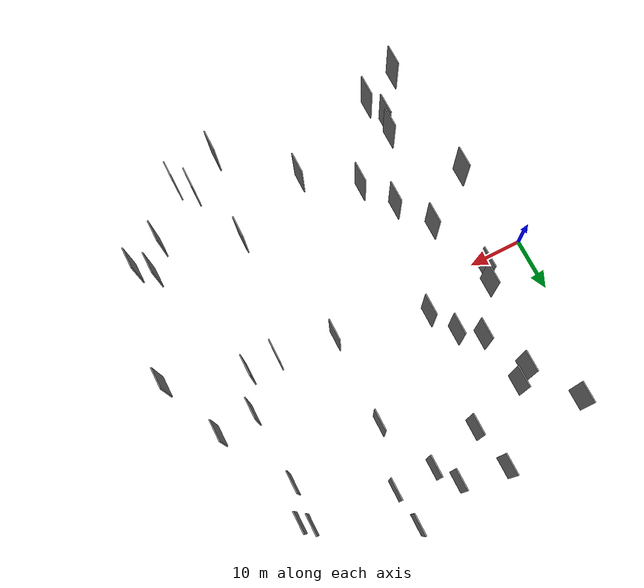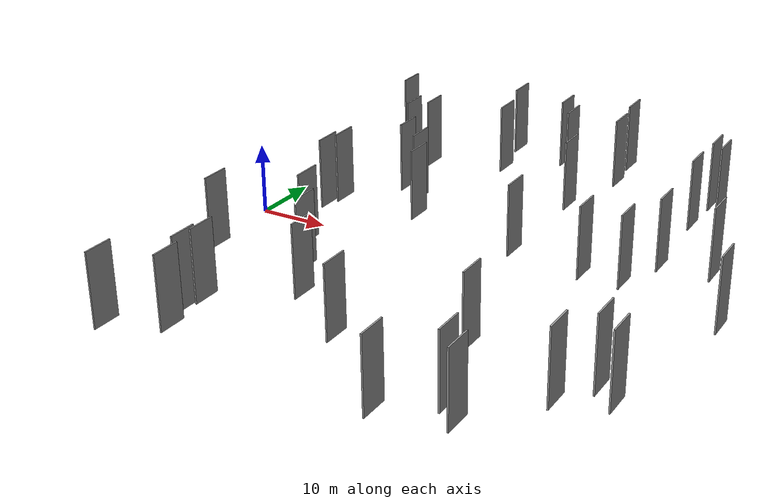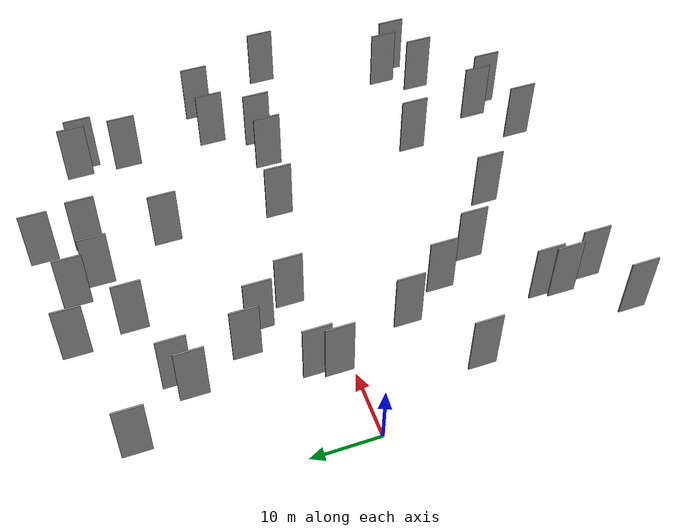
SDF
<sdf version="1.6">
 <world name="default">
  <scene>
   <sky><clouds><speed>12</speed></clouds></sky>
   <ambient>0.4 0.4 0.4 1</ambient>
   <background>0.7 0.7 0.7 1</background>
   <shadows>1</shadows>
  </scene>
  <gravity>0 0 -9.8066</gravity>
  <magnetic_field>6e-06 2.3e-05 -4.2e-05</magnetic_field>
  <physics default="0" name="default_physics" type="ode">
   <ode>
    <solver>
     <type>quick</type>
     <iters>10</iters>
     <sor>1.0</sor>
     <use_dynamic_moi_rescaling>0</use_dynamic_moi_rescaling>
    </solver>
    <constraints>
     <cfm>0</cfm>
     <erp>0.2</erp>
     <contact_max_correcting_vel>100</contact_max_correcting_vel>
     <contact_surface_layer>0.001</contact_surface_layer>
    </constraints>
   </ode>
   <max_step_size>0.004</max_step_size>
   <real_time_factor>1</real_time_factor>
   <real_time_update_rate>250</real_time_update_rate>
  </physics>
  <light name="sun" type="directional">
   <pose>0 0 10 0 0 0</pose>
   <diffuse>0.8 0.8 0.8 1</diffuse>
   <specular>0.2 0.2 0.2 1</specular>
   <attenuation>
    <range>1000</range>
    <constant>0.9</constant>
    <linear>0.01</linear>
    <quadratic>0.001</quadratic>
   </attenuation>
   <direction>-0.5 0.1 -0.9</direction>
  </light>
  <model name="grey_wall_1">
   <static>1</static>
   <pose>31.9503 32.8959 2.5 0.000000 0.000000 1.570796</pose>
   <link name="link">
    <pose>0 0 5.00 0 0 0</pose>
    <collision name="collision"><geometry><box><size>4.00 0.2 10.00</size></box></geometry></collision>
    <visual name="visual">
     <cast_shadows>0</cast_shadows>
     <geometry><box><size>4.00 0.2 10.00</size></box></geometry>
     <material>
      <script>
       <uri>model://grey_wall/materials/scripts</uri>
       <uri>model://grey_wall/materials/textures</uri>
       <name>vrc/grey_wall</name>
      </script>
     </material>
    </visual>
   </link>
  </model>
  <model name="grey_wall_2">
   <static>1</static>
   <pose>68.8717 -4.7218 2.5 0.000000 0.000000 1.570796</pose>
   <link name="link">
    <pose>0 0 5.00 0 0 0</pose>
    <collision name="collision"><geometry><box><size>4.00 0.2 10.00</size></box></geometry></collision>
    <visual name="visual">
     <cast_shadows>0</cast_shadows>
     <geometry><box><size>4.00 0.2 10.00</size></box></geometry>
     <material>
      <script>
       <uri>model://grey_wall/materials/scripts</uri>
       <uri>model://grey_wall/materials/textures</uri>
       <name>vrc/grey_wall</name>
      </script>
     </material>
    </visual>
   </link>
  </model>
  <model name="grey_wall_3">
   <static>1</static>
   <pose>19.7337 10.3597 2.5 0.000000 0.000000 1.570796</pose>
   <link name="link">
    <pose>0 0 5.00 0 0 0</pose>
    <collision name="collision"><geometry><box><size>4.00 0.2 10.00</size></box></geometry></collision>
    <visual name="visual">
     <cast_shadows>0</cast_shadows>
     <geometry><box><size>4.00 0.2 10.00</size></box></geometry>
     <material>
      <script>
       <uri>model://grey_wall/materials/scripts</uri>
       <uri>model://grey_wall/materials/textures</uri>
       <name>vrc/grey_wall</name>
      </script>
     </material>
    </visual>
   </link>
  </model>
  <model name="grey_wall_4">
   <static>1</static>
   <pose>43.0934 -39.1946 2.5 0.000000 0.000000 1.570796</pose>
   <link name="link">
    <pose>0 0 5.00 0 0 0</pose>
    <collision name="collision"><geometry><box><size>4.00 0.2 10.00</size></box></geometry></collision>
    <visual name="visual">
     <cast_shadows>0</cast_shadows>
     <geometry><box><size>4.00 0.2 10.00</size></box></geometry>
     <material>
      <script>
       <uri>model://grey_wall/materials/scripts</uri>
       <uri>model://grey_wall/materials/textures</uri>
       <name>vrc/grey_wall</name>
      </script>
     </material>
    </visual>
   </link>
  </model>
  <model name="grey_wall_5">
   <static>1</static>
   <pose>38.9406 1.5476 2.5 0.000000 0.000000 1.570796</pose>
   <link name="link">
    <pose>0 0 5.00 0 0 0</pose>
    <collision name="collision"><geometry><box><size>4.00 0.2 10.00</size></box></geometry></collision>
    <visual name="visual">
     <cast_shadows>0</cast_shadows>
     <geometry><box><size>4.00 0.2 10.00</size></box></geometry>
     <material>
      <script>
       <uri>model://grey_wall/materials/scripts</uri>
       <uri>model://grey_wall/materials/textures</uri>
       <name>vrc/grey_wall</name>
      </script>
     </material>
    </visual>
   </link>
  </model>
  <model name="grey_wall_6">
   <static>1</static>
   <pose>64.7771 -25.9482 2.5 0.000000 0.000000 1.570796</pose>
   <link name="link">
    <pose>0 0 5.00 0 0 0</pose>
    <collision name="collision"><geometry><box><size>4.00 0.2 10.00</size></box></geometry></collision>
    <visual name="visual">
     <cast_shadows>0</cast_shadows>
     <geometry><box><size>4.00 0.2 10.00</size></box></geometry>
     <material>
      <script>
       <uri>model://grey_wall/materials/scripts</uri>
       <uri>model://grey_wall/materials/textures</uri>
       <name>vrc/grey_wall</name>
      </script>
     </material>
    </visual>
   </link>
  </model>
  <model name="grey_wall_7">
   <static>1</static>
   <pose>57.2019 6.8845 2.5 0.000000 0.000000 1.570796</pose>
   <link name="link">
    <pose>0 0 5.00 0 0 0</pose>
    <collision name="collision"><geometry><box><size>4.00 0.2 10.00</size></box></geometry></collision>
    <visual name="visual">
     <cast_shadows>0</cast_shadows>
     <geometry><box><size>4.00 0.2 10.00</size></box></geometry>
     <material>
      <script>
       <uri>model://grey_wall/materials/scripts</uri>
       <uri>model://grey_wall/materials/textures</uri>
       <name>vrc/grey_wall</name>
      </script>
     </material>
    </visual>
   </link>
  </model>
  <model name="grey_wall_8">
   <static>1</static>
   <pose>21.9686 -21.5292 2.5 0.000000 0.000000 1.570796</pose>
   <link name="link">
    <pose>0 0 5.00 0 0 0</pose>
    <collision name="collision"><geometry><box><size>4.00 0.2 10.00</size></box></geometry></collision>
    <visual name="visual">
     <cast_shadows>0</cast_shadows>
     <geometry><box><size>4.00 0.2 10.00</size></box></geometry>
     <material>
      <script>
       <uri>model://grey_wall/materials/scripts</uri>
       <uri>model://grey_wall/materials/textures</uri>
       <name>vrc/grey_wall</name>
      </script>
     </material>
    </visual>
   </link>
  </model>
  <model name="grey_wall_9">
   <static>1</static>
   <pose>9.4841 2.5452 2.5 0.000000 0.000000 1.570796</pose>
   <link name="link">
    <pose>0 0 5.00 0 0 0</pose>
    <collision name="collision"><geometry><box><size>4.00 0.2 10.00</size></box></geometry></collision>
    <visual name="visual">
     <cast_shadows>0</cast_shadows>
     <geometry><box><size>4.00 0.2 10.00</size></box></geometry>
     <material>
      <script>
       <uri>model://grey_wall/materials/scripts</uri>
       <uri>model://grey_wall/materials/textures</uri>
       <name>vrc/grey_wall</name>
      </script>
     </material>
    </visual>
   </link>
  </model>
  <model name="grey_wall_10">
   <static>1</static>
   <pose>12.2216 21.3831 2.5 0.000000 0.000000 1.570796</pose>
   <link name="link">
    <pose>0 0 5.00 0 0 0</pose>
    <collision name="collision"><geometry><box><size>4.00 0.2 10.00</size></box></geometry></collision>
    <visual name="visual">
     <cast_shadows>0</cast_shadows>
     <geometry><box><size>4.00 0.2 10.00</size></box></geometry>
     <material>
      <script>
       <uri>model://grey_wall/materials/scripts</uri>
       <uri>model://grey_wall/materials/textures</uri>
       <name>vrc/grey_wall</name>
      </script>
     </material>
    </visual>
   </link>
  </model>
  <model name="grey_wall_11">
   <static>1</static>
   <pose>6.1070 -39.0108 2.5 0.000000 0.000000 1.570796</pose>
   <link name="link">
    <pose>0 0 5.00 0 0 0</pose>
    <collision name="collision"><geometry><box><size>4.00 0.2 10.00</size></box></geometry></collision>
    <visual name="visual">
     <cast_shadows>0</cast_shadows>
     <geometry><box><size>4.00 0.2 10.00</size></box></geometry>
     <material>
      <script>
       <uri>model://grey_wall/materials/scripts</uri>
       <uri>model://grey_wall/materials/textures</uri>
       <name>vrc/grey_wall</name>
      </script>
     </material>
    </visual>
   </link>
  </model>
  <model name="grey_wall_12">
   <static>1</static>
   <pose>58.2623 26.7752 2.5 0.000000 0.000000 1.570796</pose>
   <link name="link">
    <pose>0 0 5.00 0 0 0</pose>
    <collision name="collision"><geometry><box><size>4.00 0.2 10.00</size></box></geometry></collision>
    <visual name="visual">
     <cast_shadows>0</cast_shadows>
     <geometry><box><size>4.00 0.2 10.00</size></box></geometry>
     <material>
      <script>
       <uri>model://grey_wall/materials/scripts</uri>
       <uri>model://grey_wall/materials/textures</uri>
       <name>vrc/grey_wall</name>
      </script>
     </material>
    </visual>
   </link>
  </model>
  <model name="grey_wall_13">
   <static>1</static>
   <pose>14.6903 23.0575 2.5 0.000000 0.000000 1.570796</pose>
   <link name="link">
    <pose>0 0 5.00 0 0 0</pose>
    <collision name="collision"><geometry><box><size>4.00 0.2 10.00</size></box></geometry></collision>
    <visual name="visual">
     <cast_shadows>0</cast_shadows>
     <geometry><box><size>4.00 0.2 10.00</size></box></geometry>
     <material>
      <script>
       <uri>model://grey_wall/materials/scripts</uri>
       <uri>model://grey_wall/materials/textures</uri>
       <name>vrc/grey_wall</name>
      </script>
     </material>
    </visual>
   </link>
  </model>
  <model name="grey_wall_14">
   <static>1</static>
   <pose>23.5910 34.5217 2.5 0.000000 0.000000 1.570796</pose>
   <link name="link">
    <pose>0 0 5.00 0 0 0</pose>
    <collision name="collision"><geometry><box><size>4.00 0.2 10.00</size></box></geometry></collision>
    <visual name="visual">
     <cast_shadows>0</cast_shadows>
     <geometry><box><size>4.00 0.2 10.00</size></box></geometry>
     <material>
      <script>
       <uri>model://grey_wall/materials/scripts</uri>
       <uri>model://grey_wall/materials/textures</uri>
       <name>vrc/grey_wall</name>
      </script>
     </material>
    </visual>
   </link>
  </model>
  <model name="grey_wall_15">
   <static>1</static>
   <pose>62.0115 -23.6077 2.5 0.000000 0.000000 1.570796</pose>
   <link name="link">
    <pose>0 0 5.00 0 0 0</pose>
    <collision name="collision"><geometry><box><size>4.00 0.2 10.00</size></box></geometry></collision>
    <visual name="visual">
     <cast_shadows>0</cast_shadows>
     <geometry><box><size>4.00 0.2 10.00</size></box></geometry>
     <material>
      <script>
       <uri>model://grey_wall/materials/scripts</uri>
       <uri>model://grey_wall/materials/textures</uri>
       <name>vrc/grey_wall</name>
      </script>
     </material>
    </visual>
   </link>
  </model>
  <model name="grey_wall_16">
   <static>1</static>
   <pose>39.1364 18.4149 2.5 0.000000 0.000000 1.570796</pose>
   <link name="link">
    <pose>0 0 5.00 0 0 0</pose>
    <collision name="collision"><geometry><box><size>4.00 0.2 10.00</size></box></geometry></collision>
    <visual name="visual">
     <cast_shadows>0</cast_shadows>
     <geometry><box><size>4.00 0.2 10.00</size></box></geometry>
     <material>
      <script>
       <uri>model://grey_wall/materials/scripts</uri>
       <uri>model://grey_wall/materials/textures</uri>
       <name>vrc/grey_wall</name>
      </script>
     </material>
    </visual>
   </link>
  </model>
  <model name="grey_wall_17">
   <static>1</static>
   <pose>56.6395 27.9971 2.5 0.000000 0.000000 1.570796</pose>
   <link name="link">
    <pose>0 0 5.00 0 0 0</pose>
    <collision name="collision"><geometry><box><size>4.00 0.2 10.00</size></box></geometry></collision>
    <visual name="visual">
     <cast_shadows>0</cast_shadows>
     <geometry><box><size>4.00 0.2 10.00</size></box></geometry>
     <material>
      <script>
       <uri>model://grey_wall/materials/scripts</uri>
       <uri>model://grey_wall/materials/textures</uri>
       <name>vrc/grey_wall</name>
      </script>
     </material>
    </visual>
   </link>
  </model>
  <model name="grey_wall_18">
   <static>1</static>
   <pose>34.5440 29.1507 2.5 0.000000 0.000000 1.570796</pose>
   <link name="link">
    <pose>0 0 5.00 0 0 0</pose>
    <collision name="collision"><geometry><box><size>4.00 0.2 10.00</size></box></geometry></collision>
    <visual name="visual">
     <cast_shadows>0</cast_shadows>
     <geometry><box><size>4.00 0.2 10.00</size></box></geometry>
     <material>
      <script>
       <uri>model://grey_wall/materials/scripts</uri>
       <uri>model://grey_wall/materials/textures</uri>
       <name>vrc/grey_wall</name>
      </script>
     </material>
    </visual>
   </link>
  </model>
  <model name="grey_wall_19">
   <static>1</static>
   <pose>45.4945 -22.3364 2.5 0.000000 0.000000 1.570796</pose>
   <link name="link">
    <pose>0 0 5.00 0 0 0</pose>
    <collision name="collision"><geometry><box><size>4.00 0.2 10.00</size></box></geometry></collision>
    <visual name="visual">
     <cast_shadows>0</cast_shadows>
     <geometry><box><size>4.00 0.2 10.00</size></box></geometry>
     <material>
      <script>
       <uri>model://grey_wall/materials/scripts</uri>
       <uri>model://grey_wall/materials/textures</uri>
       <name>vrc/grey_wall</name>
      </script>
     </material>
    </visual>
   </link>
  </model>
  <model name="grey_wall_20">
   <static>1</static>
   <pose>12.3892 -28.4070 2.5 0.000000 0.000000 1.570796</pose>
   <link name="link">
    <pose>0 0 5.00 0 0 0</pose>
    <collision name="collision"><geometry><box><size>4.00 0.2 10.00</size></box></geometry></collision>
    <visual name="visual">
     <cast_shadows>0</cast_shadows>
     <geometry><box><size>4.00 0.2 10.00</size></box></geometry>
     <material>
      <script>
       <uri>model://grey_wall/materials/scripts</uri>
       <uri>model://grey_wall/materials/textures</uri>
       <name>vrc/grey_wall</name>
      </script>
     </material>
    </visual>
   </link>
  </model>
  <model name="grey_wall_21">
   <static>1</static>
   <pose>54.8642 0.0872 2.5 0.000000 0.000000 1.570796</pose>
   <link name="link">
    <pose>0 0 5.00 0 0 0</pose>
    <collision name="collision"><geometry><box><size>4.00 0.2 10.00</size></box></geometry></collision>
    <visual name="visual">
     <cast_shadows>0</cast_shadows>
     <geometry><box><size>4.00 0.2 10.00</size></box></geometry>
     <material>
      <script>
       <uri>model://grey_wall/materials/scripts</uri>
       <uri>model://grey_wall/materials/textures</uri>
       <name>vrc/grey_wall</name>
      </script>
     </material>
    </visual>
   </link>
  </model>
  <model name="grey_wall_22">
   <static>1</static>
   <pose>25.1687 26.4537 2.5 0.000000 0.000000 1.570796</pose>
   <link name="link">
    <pose>0 0 5.00 0 0 0</pose>
    <collision name="collision"><geometry><box><size>4.00 0.2 10.00</size></box></geometry></collision>
    <visual name="visual">
     <cast_shadows>0</cast_shadows>
     <geometry><box><size>4.00 0.2 10.00</size></box></geometry>
     <material>
      <script>
       <uri>model://grey_wall/materials/scripts</uri>
       <uri>model://grey_wall/materials/textures</uri>
       <name>vrc/grey_wall</name>
      </script>
     </material>
    </visual>
   </link>
  </model>
  <model name="grey_wall_23">
   <static>1</static>
   <pose>51.9280 -37.1989 2.5 0.000000 0.000000 1.570796</pose>
   <link name="link">
    <pose>0 0 5.00 0 0 0</pose>
    <collision name="collision"><geometry><box><size>4.00 0.2 10.00</size></box></geometry></collision>
    <visual name="visual">
     <cast_shadows>0</cast_shadows>
     <geometry><box><size>4.00 0.2 10.00</size></box></geometry>
     <material>
      <script>
       <uri>model://grey_wall/materials/scripts</uri>
       <uri>model://grey_wall/materials/textures</uri>
       <name>vrc/grey_wall</name>
      </script>
     </material>
    </visual>
   </link>
  </model>
  <model name="grey_wall_24">
   <static>1</static>
   <pose>56.4216 20.5683 2.5 0.000000 0.000000 1.570796</pose>
   <link name="link">
    <pose>0 0 5.00 0 0 0</pose>
    <collision name="collision"><geometry><box><size>4.00 0.2 10.00</size></box></geometry></collision>
    <visual name="visual">
     <cast_shadows>0</cast_shadows>
     <geometry><box><size>4.00 0.2 10.00</size></box></geometry>
     <material>
      <script>
       <uri>model://grey_wall/materials/scripts</uri>
       <uri>model://grey_wall/materials/textures</uri>
       <name>vrc/grey_wall</name>
      </script>
     </material>
    </visual>
   </link>
  </model>
  <model name="grey_wall_25">
   <static>1</static>
   <pose>49.4482 -0.0106 2.5 0.000000 0.000000 1.570796</pose>
   <link name="link">
    <pose>0 0 5.00 0 0 0</pose>
    <collision name="collision"><geometry><box><size>4.00 0.2 10.00</size></box></geometry></collision>
    <visual name="visual">
     <cast_shadows>0</cast_shadows>
     <geometry><box><size>4.00 0.2 10.00</size></box></geometry>
     <material>
      <script>
       <uri>model://grey_wall/materials/scripts</uri>
       <uri>model://grey_wall/materials/textures</uri>
       <name>vrc/grey_wall</name>
      </script>
     </material>
    </visual>
   </link>
  </model>
  <model name="grey_wall_26">
   <static>1</static>
   <pose>16.0494 13.1838 2.5 0.000000 0.000000 1.570796</pose>
   <link name="link">
    <pose>0 0 5.00 0 0 0</pose>
    <collision name="collision"><geometry><box><size>4.00 0.2 10.00</size></box></geometry></collision>
    <visual name="visual">
     <cast_shadows>0</cast_shadows>
     <geometry><box><size>4.00 0.2 10.00</size></box></geometry>
     <material>
      <script>
       <uri>model://grey_wall/materials/scripts</uri>
       <uri>model://grey_wall/materials/textures</uri>
       <name>vrc/grey_wall</name>
      </script>
     </material>
    </visual>
   </link>
  </model>
  <model name="grey_wall_27">
   <static>1</static>
   <pose>13.9716 -8.8955 2.5 0.000000 0.000000 1.570796</pose>
   <link name="link">
    <pose>0 0 5.00 0 0 0</pose>
    <collision name="collision"><geometry><box><size>4.00 0.2 10.00</size></box></geometry></collision>
    <visual name="visual">
     <cast_shadows>0</cast_shadows>
     <geometry><box><size>4.00 0.2 10.00</size></box></geometry>
     <material>
      <script>
       <uri>model://grey_wall/materials/scripts</uri>
       <uri>model://grey_wall/materials/textures</uri>
       <name>vrc/grey_wall</name>
      </script>
     </material>
    </visual>
   </link>
  </model>
  <model name="grey_wall_28">
   <static>1</static>
   <pose>13.2574 -35.7822 2.5 0.000000 0.000000 1.570796</pose>
   <link name="link">
    <pose>0 0 5.00 0 0 0</pose>
    <collision name="collision"><geometry><box><size>4.00 0.2 10.00</size></box></geometry></collision>
    <visual name="visual">
     <cast_shadows>0</cast_shadows>
     <geometry><box><size>4.00 0.2 10.00</size></box></geometry>
     <material>
      <script>
       <uri>model://grey_wall/materials/scripts</uri>
       <uri>model://grey_wall/materials/textures</uri>
       <name>vrc/grey_wall</name>
      </script>
     </material>
    </visual>
   </link>
  </model>
  <model name="grey_wall_29">
   <static>1</static>
   <pose>49.3860 -34.5320 2.5 0.000000 0.000000 1.570796</pose>
   <link name="link">
    <pose>0 0 5.00 0 0 0</pose>
    <collision name="collision"><geometry><box><size>4.00 0.2 10.00</size></box></geometry></collision>
    <visual name="visual">
     <cast_shadows>0</cast_shadows>
     <geometry><box><size>4.00 0.2 10.00</size></box></geometry>
     <material>
      <script>
       <uri>model://grey_wall/materials/scripts</uri>
       <uri>model://grey_wall/materials/textures</uri>
       <name>vrc/grey_wall</name>
      </script>
     </material>
    </visual>
   </link>
  </model>
  <model name="grey_wall_30">
   <static>1</static>
   <pose>41.2580 35.9786 2.5 0.000000 0.000000 1.570796</pose>
   <link name="link">
    <pose>0 0 5.00 0 0 0</pose>
    <collision name="collision"><geometry><box><size>4.00 0.2 10.00</size></box></geometry></collision>
    <visual name="visual">
     <cast_shadows>0</cast_shadows>
     <geometry><box><size>4.00 0.2 10.00</size></box></geometry>
     <material>
      <script>
       <uri>model://grey_wall/materials/scripts</uri>
       <uri>model://grey_wall/materials/textures</uri>
       <name>vrc/grey_wall</name>
      </script>
     </material>
    </visual>
   </link>
  </model>
  <model name="grey_wall_31">
   <static>1</static>
   <pose>10.2916 5.3088 2.5 0.000000 0.000000 1.570796</pose>
   <link name="link">
    <pose>0 0 5.00 0 0 0</pose>
    <collision name="collision"><geometry><box><size>4.00 0.2 10.00</size></box></geometry></collision>
    <visual name="visual">
     <cast_shadows>0</cast_shadows>
     <geometry><box><size>4.00 0.2 10.00</size></box></geometry>
     <material>
      <script>
       <uri>model://grey_wall/materials/scripts</uri>
       <uri>model://grey_wall/materials/textures</uri>
       <name>vrc/grey_wall</name>
      </script>
     </material>
    </visual>
   </link>
  </model>
  <model name="grey_wall_32">
   <static>1</static>
   <pose>11.8504 -31.0997 2.5 0.000000 0.000000 1.570796</pose>
   <link name="link">
    <pose>0 0 5.00 0 0 0</pose>
    <collision name="collision"><geometry><box><size>4.00 0.2 10.00</size></box></geometry></collision>
    <visual name="visual">
     <cast_shadows>0</cast_shadows>
     <geometry><box><size>4.00 0.2 10.00</size></box></geometry>
     <material>
      <script>
       <uri>model://grey_wall/materials/scripts</uri>
       <uri>model://grey_wall/materials/textures</uri>
       <name>vrc/grey_wall</name>
      </script>
     </material>
    </visual>
   </link>
  </model>
  <model name="grey_wall_33">
   <static>1</static>
   <pose>22.4370 5.2452 2.5 0.000000 0.000000 1.570796</pose>
   <link name="link">
    <pose>0 0 5.00 0 0 0</pose>
    <collision name="collision"><geometry><box><size>4.00 0.2 10.00</size></box></geometry></collision>
    <visual name="visual">
     <cast_shadows>0</cast_shadows>
     <geometry><box><size>4.00 0.2 10.00</size></box></geometry>
     <material>
      <script>
       <uri>model://grey_wall/materials/scripts</uri>
       <uri>model://grey_wall/materials/textures</uri>
       <name>vrc/grey_wall</name>
      </script>
     </material>
    </visual>
   </link>
  </model>
  <model name="grey_wall_34">
   <static>1</static>
   <pose>4.3286 -15.6109 2.5 0.000000 0.000000 1.570796</pose>
   <link name="link">
    <pose>0 0 5.00 0 0 0</pose>
    <collision name="collision"><geometry><box><size>4.00 0.2 10.00</size></box></geometry></collision>
    <visual name="visual">
     <cast_shadows>0</cast_shadows>
     <geometry><box><size>4.00 0.2 10.00</size></box></geometry>
     <material>
      <script>
       <uri>model://grey_wall/materials/scripts</uri>
       <uri>model://grey_wall/materials/textures</uri>
       <name>vrc/grey_wall</name>
      </script>
     </material>
    </visual>
   </link>
  </model>
  <model name="grey_wall_35">
   <static>1</static>
   <pose>63.9100 7.4844 2.5 0.000000 0.000000 1.570796</pose>
   <link name="link">
    <pose>0 0 5.00 0 0 0</pose>
    <collision name="collision"><geometry><box><size>4.00 0.2 10.00</size></box></geometry></collision>
    <visual name="visual">
     <cast_shadows>0</cast_shadows>
     <geometry><box><size>4.00 0.2 10.00</size></box></geometry>
     <material>
      <script>
       <uri>model://grey_wall/materials/scripts</uri>
       <uri>model://grey_wall/materials/textures</uri>
       <name>vrc/grey_wall</name>
      </script>
     </material>
    </visual>
   </link>
  </model>
  <model name="grey_wall_36">
   <static>1</static>
   <pose>41.9633 29.3747 2.5 0.000000 0.000000 1.570796</pose>
   <link name="link">
    <pose>0 0 5.00 0 0 0</pose>
    <collision name="collision"><geometry><box><size>4.00 0.2 10.00</size></box></geometry></collision>
    <visual name="visual">
     <cast_shadows>0</cast_shadows>
     <geometry><box><size>4.00 0.2 10.00</size></box></geometry>
     <material>
      <script>
       <uri>model://grey_wall/materials/scripts</uri>
       <uri>model://grey_wall/materials/textures</uri>
       <name>vrc/grey_wall</name>
      </script>
     </material>
    </visual>
   </link>
  </model>
  <model name="grey_wall_37">
   <static>1</static>
   <pose>58.8974 -28.4424 2.5 0.000000 0.000000 1.570796</pose>
   <link name="link">
    <pose>0 0 5.00 0 0 0</pose>
    <collision name="collision"><geometry><box><size>4.00 0.2 10.00</size></box></geometry></collision>
    <visual name="visual">
     <cast_shadows>0</cast_shadows>
     <geometry><box><size>4.00 0.2 10.00</size></box></geometry>
     <material>
      <script>
       <uri>model://grey_wall/materials/scripts</uri>
       <uri>model://grey_wall/materials/textures</uri>
       <name>vrc/grey_wall</name>
      </script>
     </material>
    </visual>
   </link>
  </model>
  <model name="grey_wall_38">
   <static>1</static>
   <pose>6.5544 30.2019 2.5 0.000000 0.000000 1.570796</pose>
   <link name="link">
    <pose>0 0 5.00 0 0 0</pose>
    <collision name="collision"><geometry><box><size>4.00 0.2 10.00</size></box></geometry></collision>
    <visual name="visual">
     <cast_shadows>0</cast_shadows>
     <geometry><box><size>4.00 0.2 10.00</size></box></geometry>
     <material>
      <script>
       <uri>model://grey_wall/materials/scripts</uri>
       <uri>model://grey_wall/materials/textures</uri>
       <name>vrc/grey_wall</name>
      </script>
     </material>
    </visual>
   </link>
  </model>
  <model name="grey_wall_39">
   <static>1</static>
   <pose>31.1271 -28.2200 2.5 0.000000 0.000000 1.570796</pose>
   <link name="link">
    <pose>0 0 5.00 0 0 0</pose>
    <collision name="collision"><geometry><box><size>4.00 0.2 10.00</size></box></geometry></collision>
    <visual name="visual">
     <cast_shadows>0</cast_shadows>
     <geometry><box><size>4.00 0.2 10.00</size></box></geometry>
     <material>
      <script>
       <uri>model://grey_wall/materials/scripts</uri>
       <uri>model://grey_wall/materials/textures</uri>
       <name>vrc/grey_wall</name>
      </script>
     </material>
    </visual>
   </link>
  </model>
  <model name="grey_wall_40">
   <static>1</static>
   <pose>18.1129 -15.4071 2.5 0.000000 0.000000 1.570796</pose>
   <link name="link">
    <pose>0 0 5.00 0 0 0</pose>
    <collision name="collision"><geometry><box><size>4.00 0.2 10.00</size></box></geometry></collision>
    <visual name="visual">
     <cast_shadows>0</cast_shadows>
     <geometry><box><size>4.00 0.2 10.00</size></box></geometry>
     <material>
      <script>
       <uri>model://grey_wall/materials/scripts</uri>
       <uri>model://grey_wall/materials/textures</uri>
       <name>vrc/grey_wall</name>
      </script>
     </material>
    </visual>
   </link>
  </model>
 </world>
</sdf>
